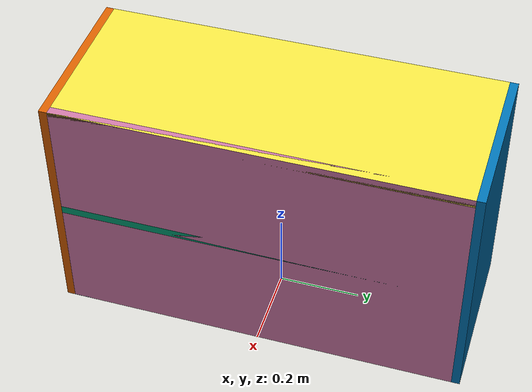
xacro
<?xml version="1.0" ?>
<robot name="bookshelf_teak"
       xmlns:xacro="http://www.ros.org/wiki/xacro">

  <!-- Gazebo/Moveit model of a 2-board bookshelf

       (C) 2021 fnh, hendrich@informatik.uni-hamburg.de
  -->

  <xacro:include filename="$(find tams_books_world)/urdf/bookshelf.xacro" />

  <xacro:bookshelf_2 name="bookshelf_teak" sx="0.4" sy="1.0" sz="0.6" tt="0.02"
                     meshname="board-medium.dae" rear_board="true" >
  </xacro:bookshelf_2>

</robot>

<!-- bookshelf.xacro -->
<robot name="bookshelf"
       xmlns:xacro="http://www.ros.org/wiki/xacro">

  <!--
       ROS URDF model of configurable bookshelves.
       Origin and center of mass are at the center of the mesh.

       (C) 2019 fnh, hendrich@informatik.uni-hamburg.de
  -->

  <xacro:include filename="$(find tams_books_world)/urdf/book_cube.xacro" />

  <!-- A bookshelf with 2 shelves (top, middle, bottom boards) -->
  <!-- outer dimension (sx * sy * sz), board thickness tt -->
  <!-- board weight calculated by volume and density of wood 980kg/m^3 -->
  <!-- rear_board: true/false -->
  <xacro:macro name="bookshelf_2" params="name sx sy sz tt rear_board meshname='board-office-gray.dae'" >
    <link name="${name}" >
      <inertial>
        <origin xyz="0 0 ${sz/2}" rpy="0 0 0" />
        <mass value="1" />
        <inertia ixx="1" ixy="0" ixz="0" iyy="1" iyz="0" izz="1" />
      </inertial>
      <collision>
        <origin xyz="0 0 0" rpy="0 0 0" />
        <geometry>
          <box size="0.001 0.001 0.001" rpy="0 0 0" />
        </geometry>
      </collision>
      <visual>
        <!-- dummy visual to keep xacro happy -->
        <origin xyz="0 0 0" rpy="0 0 0" />
        <material name="${name}/unused_material" >
          <color rgba="1 0 0 0.5" />
        </material>
        <geometry>
          <box size="0.001 0.001 0.001" rpy="0 0 0" />
        </geometry>
      </visual>
    </link>

    <gazebo reference="${name}">
      <turnGravityOff>false</turnGravityOff>
      <selfCollide>false</selfCollide>
      <!-- kp: stiffness kd: damping mu1, mu2: friction -->
      <mu1>100.0</mu1>
      <mu2>100.0</mu2>
      <kp>1000000.0</kp>
      <kd>1.0</kd>
    </gazebo>

    <xacro:book_cube name="${name}/bottom_board" weight="${sx*sy*sz*980}"
                     mesh="${meshname}"
                     xsize="${sx}" ysize="${sy-2*tt}" zsize="${tt}" />

    <xacro:book_cube name="${name}/middle_board" weight="3.0"
                     mesh="${meshname}"
                     xsize="${sx}" ysize="${sy-2*tt}" zsize="${tt}" />

    <xacro:book_cube name="${name}/top_board" weight="3.0"
                     mesh="${meshname}"
                     xsize="${sx}" ysize="${sy-2*tt}" zsize="${tt}" />

    <xacro:book_cube name="${name}/left_wall" weight="3.0"
                     mesh="${meshname}"
                     xsize="${sx}" ysize="${tt}" zsize="${sz}" />

    <xacro:book_cube name="${name}/right_wall" weight="3.0"
                     mesh="${meshname}"
                     xsize="${sx}" ysize="${tt}" zsize="${sz}" />

    <joint name="${name}/bottom_board_joint" type="fixed">
      <parent link="${name}" />
      <child link="${name}/bottom_board_link" />
      <origin xyz="0 0 ${tt/2}" rpy="0 0 0" />
    </joint>

    <joint name="${name}/middle_board_joint" type="fixed">
      <parent link="${name}" />
      <child link="${name}/middle_board_link" />
      <origin xyz="0 0 ${sz/2}" rpy="0 0 0" />
    </joint>

    <joint name="${name}/top_board_joint" type="fixed">
      <parent link="${name}" />
      <child link="${name}/top_board_link" />
      <origin xyz="0 0 ${sz-tt/2}" rpy="0 0 0" />
    </joint>

    <joint name="${name}/left_wall_joint" type="fixed">
      <parent link="${name}" />
      <child link="${name}/left_wall_link" />
      <origin xyz="0 ${sy/2-tt/2} ${sz/2}" rpy="0 0 0" />
    </joint>

    <joint name="${name}/right_wall_joint" type="fixed">
      <parent link="${name}" />
      <child link="${name}/right_wall_link" />
      <origin xyz="0 ${-sy/2+tt/2} ${sz/2}" rpy="0 0 0" />
    </joint>

    <xacro:if value="${rear_board}">
      <xacro:book_cube name="${name}/rear_wall" weight="3.0"
                       mesh="${meshname}"
                       xsize="${tt}" ysize="${sy-2*tt}" zsize="${sz}" />

      <joint name="${name}/rear_wall_joint" type="fixed">
        <parent link="${name}" />
        <child link="${name}/rear_wall_link" />
        <origin xyz="${sx/2-tt/2} 0 ${sz/2}" rpy="0 0 0" />
      </joint>
    </xacro:if>
  </xacro:macro>

  <!-- A bookshelf with 4 shelves (top, middle, bottom boards) -->
  <!-- outer dimension (sx * sy * sz), board thickness tt -->
  <!-- board weight calculated by volume and density of wood 980kg/m^3 -->
  <!-- rear_board: true/false -->
  <xacro:macro name="bookshelf_4" params="name sx sy sz tt rear_board meshname:='board-office-gray.dae'" >
    <link name="${name}" >
      <inertial>
        <origin xyz="0 0 ${sz/2}" rpy="0 0 0" />
        <mass value="1" />
        <inertia ixx="1" ixy="0" ixz="0" iyy="1" iyz="0" izz="1" />
      </inertial>
      <collision>
        <origin xyz="0 0 0" rpy="0 0 0" />
        <geometry>
          <box size="0.001 0.001 0.001" rpy="0 0 0" />
        </geometry>
      </collision>
      <visual>
        <!-- dummy visual to keep xacro happy -->
        <origin xyz="0 0 0" rpy="0 0 0" />
        <material name="${name}/unused_material" >
          <color rgba="1 0 0 0.5" />
        </material>
        <geometry>
          <box size="0.001 0.001 0.001" rpy="0 0 0" />
        </geometry>
      </visual>
    </link>

    <gazebo reference="${name}">
      <turnGravityOff>false</turnGravityOff>
      <selfCollide>true</selfCollide>
      <!-- kp: stiffness kd: damping mu1, mu2: friction -->
      <mu1>100.0</mu1>
      <mu2>100.0</mu2>
      <kp>1000000.0</kp>
      <kd>1.0</kd>
    </gazebo>

    <xacro:book_cube name="${name}/bottom_board" weight="${sx*sy*sz*980}"
                     mesh="${meshname}"
                     xsize="${sx}" ysize="${sy-2*tt}" zsize="${tt}" />

    <xacro:book_cube name="${name}/lower_board" weight="3.0"
                     mesh="${meshname}"
                     xsize="${sx}" ysize="${sy-2*tt}" zsize="${tt}" />

    <xacro:book_cube name="${name}/middle_board" weight="3.0"
                     mesh="${meshname}"
                     xsize="${sx}" ysize="${sy-2*tt}" zsize="${tt}" />

    <xacro:book_cube name="${name}/upper_board" weight="3.0"
                     mesh="${meshname}"
                     xsize="${sx}" ysize="${sy-2*tt}" zsize="${tt}" />

    <xacro:book_cube name="${name}/top_board" weight="3.0"
                     mesh="${meshname}"
                     xsize="${sx}" ysize="${sy-2*tt}" zsize="${tt}" />

    <xacro:book_cube name="${name}/left_wall" weight="3.0"
                     mesh="${meshname}"
                     xsize="${sx}" ysize="${tt}" zsize="${sz}" />

    <xacro:book_cube name="${name}/right_wall" weight="3.0"
                     mesh="${meshname}"
                     xsize="${sx}" ysize="${tt}" zsize="${sz}" />

    <joint name="${name}/bottom_board_joint" type="fixed">
      <parent link="${name}" />
      <child link="${name}/bottom_board_link" />
      <origin xyz="0 0 ${tt/2}" rpy="0 0 0" />
    </joint>

    <joint name="${name}/lower_board_joint" type="fixed">
      <parent link="${name}" />
      <child link="${name}/lower_board_link" />
      <origin xyz="0 0 ${1*sz/4}" rpy="0 0 0" />
    </joint>

    <joint name="${name}/middle_board_joint" type="fixed">
      <parent link="${name}" />
      <child link="${name}/middle_board_link" />
      <origin xyz="0 0 ${sz/2}" rpy="0 0 0" />
    </joint>

    <joint name="${name}/upper_board_joint" type="fixed">
      <parent link="${name}" />
      <child link="${name}/upper_board_link" />
      <origin xyz="0 0 ${3*sz/4}" rpy="0 0 0" />
    </joint>

    <joint name="${name}/top_board_joint" type="fixed">
      <parent link="${name}" />
      <child link="${name}/top_board_link" />
      <origin xyz="0 0 ${sz-tt/2}" rpy="0 0 0" />
    </joint>

    <joint name="${name}/left_wall_joint" type="fixed">
      <parent link="${name}" />
      <child link="${name}/left_wall_link" />
      <origin xyz="0 ${sy/2-tt/2} ${sz/2}" rpy="0 0 0" />
    </joint>

    <joint name="${name}/right_wall_joint" type="fixed">
      <parent link="${name}" />
      <child link="${name}/right_wall_link" />
      <origin xyz="0 ${-sy/2+tt/2} ${sz/2}" rpy="0 0 0" />
    </joint>

    <xacro:if value="${rear_board}">
      <xacro:book_cube name="${name}/rear_wall" weight="3.0"
                       mesh="${meshname}"
                       xsize="${tt}" ysize="${sy-2*tt}" zsize="${sz}" />

      <joint name="${name}/rear_wall_joint" type="fixed">
        <parent link="${name}" />
        <child link="${name}/rear_wall_link" />
        <origin xyz="${sx/2-tt/2} 0 ${sz/2}" rpy="0 0 0" />
      </joint>
    </xacro:if>
  </xacro:macro>

</robot>

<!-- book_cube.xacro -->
<robot name="book_cube"
       xmlns:controller="http://playerstage.sourceforge.net/gazebo/xmlschema/#controller"
       xmlns:interface="http://playerstage.sourceforge.net/gazebo/xmlschema/#interface"
       xmlns:sensor="http://playerstage.sourceforge.net/gazebo/xmlschema/#sensor"
       xmlns:xacro="http://www.ros.org/wiki/xacro">
  <!--
       basic ROS xacro macro for a "book": a cube with textures.
       Origin and center of mass are at the center of the mesh.

       (C) 2019 fnh, hendrich@informatik.uni-hamburg.de
  -->

<xacro:macro name="book_cube" params="name weight mesh xsize ysize zsize">

  <!-- main body with Collada mesh for both visual and collision -->
  <link name="${name}_link">
    <inertial>
      <mass value="${weight}"/>
      <origin rpy="0 0 0" xyz="0 0 0"/>
      <inertia ixx="${weight/12*(ysize*ysize+zsize*zsize)}"
               iyy="${weight/12*(xsize*xsize+zsize*zsize)}"
               izz="${weight/12*(xsize*xsize+ysize*ysize)}"
               ixy="0" ixz="0" iyz="0" />
    </inertial>
    <collision>
      <origin rpy="0 0 0" xyz="0 0 0"/>
      <geometry>
        <box size="${xsize} ${ysize} ${zsize}" rpy="0 0 0" />
      </geometry>
    </collision>
    <visual>
      <origin rpy="0 0 0" xyz="0 0 0"/>
      <geometry>
        <mesh filename="package://tams_books_world/meshes/${mesh}" scale="${0.5*xsize} ${0.5*ysize} ${0.5*zsize}" />
      </geometry>
    </visual>
  </link>
  <gazebo reference="${name}_link">
    <!-- material/texture definition for Gazebo -->
    <turnGravityOff>false</turnGravityOff>
    <selfCollide>true</selfCollide>
    <mu1>1</mu1>
    <mu2>1</mu2>
    <kp>10000000.0</kp>
    <kd>10.0</kd>
  </gazebo>
</xacro:macro>

</robot>
